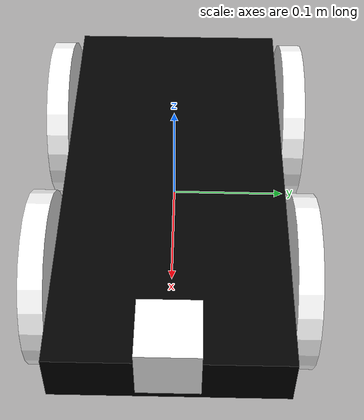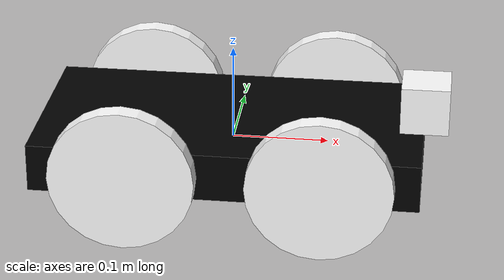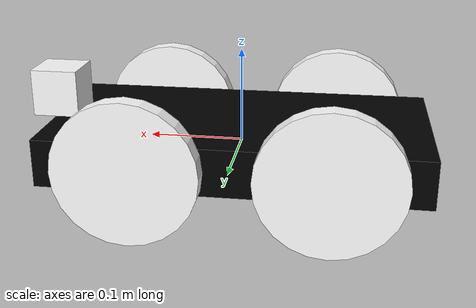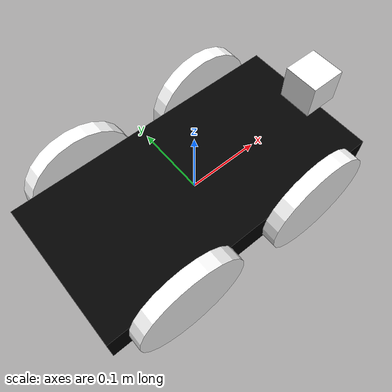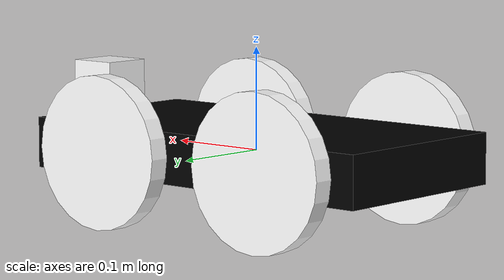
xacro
<?xml version="1.0"?>
<robot name="macroed" xmlns:xacro="http://ros.org/wiki/xacro">

  	<xacro:property name="pi" value="3.1415" />
	<xacro:property name="chassis_length" value="0.4" />
	<xacro:property name="chassis_width" value="0.2" />
	<xacro:property name="chassis_height" value="0.05" />
	<xacro:property name="wheel_radius" value="0.075" />
	<xacro:property name="wheel_length" value="0.02" />

  <material name="blue">
    <color rgba="0 0 0.8 1"/>
  </material>

  <material name="black">
    <color rgba="0 0 0 1"/>
  </material>

  <material name="white">
    <color rgba="1 1 1 1"/>e
  </material>

  <xacro:macro name="default_inertial" params="mass">
    <inertial>
      <mass value="${mass}" />
      <inertia ixx="1.0" ixy="0.0" ixz="0.0" iyy="1.0" iyz="0.0" izz="1.0" />
    </inertial>
  </xacro:macro>

  <xacro:macro name="cylinder_inertia" params ="m r h">
    <inertial>
     <mass value="${m}"/>
     <inertia ixx="${m*(3*r*r+h*h)/12}"  ixy="0.0" ixz="0.0"
              iyy="${m*(3*r*r+h*h)/12}"  iyz= "0.0"
              izz="${m*r*r/2}"/>
     </inertial>
  </xacro:macro>

  <link name="base_link">
    <visual>
      <geometry>
        <box size="${chassis_length} ${chassis_width} ${chassis_height}"/>
      </geometry>
      <material name="black"/>
    </visual>
    <collision>
      <geometry>
        <box size="${chassis_length} ${chassis_width} ${chassis_height}"/>
      </geometry>
    </collision>
    <xacro:default_inertial mass="10.0"/>
  </link>
<gazebo reference="base_link">
    <turnGravityOff>false</turnGravityOff>
	<material>Gazebo/Black</material>
  </gazebo>

  <xacro:macro name="wheel" params="prefix suffix X Y">

    <link name="${prefix}_${suffix}_wheel">
      <visual>
        <origin xyz="0 0 0" rpy="${pi/2} 0 0" />
        <geometry>
          <cylinder radius="${wheel_radius}" length="${wheel_length}"/>
        </geometry>
        <material name="white"/>
      </visual>
      <collision>
        <origin xyz="0 0 0" rpy="${pi/2} 0 0" />
        <geometry>
          <cylinder radius="${wheel_radius}" length="${wheel_length}"/>
        </geometry>
      </collision>
      <xacro:cylinder_inertia m="2.0" r="${wheel_radius}" h="${wheel_length}"/>
    </link>

    <gazebo reference ="${prefix}_${suffix}_wheel">
      <mu1 value="200.0"/>
      <mu2 value="100.0"/>
      <kp value="10000000.0"/>
      <kd value= "1.0"/>
      <material>Gazebo/White</material>
      <turnGravityOff>false</turnGravityOff>
    </gazebo>

    <joint name="${prefix}_${suffix}_wheel_joint" type="continuous">
      <axis xyz="0 1 0" rpy="0 0 0" />
      <parent link="base_link"/>
      <child link="${prefix}_${suffix}_wheel"/>
      <origin xyz="${X*(chassis_length/4)} ${Y*((chassis_width/2)+(wheel_length/2))} 0" rpy="0 0 0"/>
      <limit effort= "100" velocity="100"/>
      <dynamics damping="0.0" friction="0.0"/>
    </joint>

    <transmission name="${prefix}_${suffix}_wheel_trans">
      <type>transmission_interface/SimpleTransmission</type>
      <actuator name="${prefix}_${suffix}_wheel_motor">
	<hardwareInterface>EffortJointInterface</hardwareInterface>
        <mechanicalReduction>1</mechanicalReduction>
      </actuator>
      <joint name="${prefix}_${suffix}_wheel_joint">
        <hardwareInterface>VelocityJointInterface</hardwareInterface>
      </joint>
    </transmission>

  </xacro:macro>

<xacro:wheel prefix="right" suffix="front" X="1" Y="-1"/>
<xacro:wheel prefix="right" suffix="back" X="-1" Y="-1" />
<xacro:wheel prefix="left" suffix="front" X="1" Y="1" />
<xacro:wheel prefix="left" suffix="back" X="-1" Y="1"/>

<link name="camera_link">
  <visual>
    <origin xyz="0 0 0" rpy="0 0 0"/>
   <geometry>
     <box size="0.05 0.05 0.05"/>
   </geometry>
   <material name="white"/>
   </visual>
 </link>

<joint name="camera_joint" type="fixed">
  <origin xyz="0.2 0 0.05" rpy="0 0 0"/>
  <parent link="base_link"/>
  <child link="camera_link"/>
</joint>

 <gazebo reference="camera_link">
    <sensor type="camera" name="camera1">
      <update_rate>30.0</update_rate>
      <camera name="head">
        <horizontal_fov>1.3962634</horizontal_fov>
        <image>
          <width>800</width>
          <height>800</height>
          <format>R8G8B8</format>
        </image>
        <clip>
          <near>0.02</near>
          <far>300</far>
        </clip>
        <noise>
          <type>gaussian</type>
          <!-- Noise is sampled independently per pixel on each frame.
               That pixel's noise value is added to each of its color
               channels, which at that point lie in the range [0,1]. -->
          <mean>0.0</mean>
          <stddev>0.007</stddev>
        </noise>
      </camera>
      <plugin name="camera_controller" filename="libgazebo_ros_camera.so">
        <alwaysOn>true</alwaysOn>
        <updateRate>0.0</updateRate>
        <cameraName>rrbot/camera1</cameraName>
        <imageTopicName>image_raw</imageTopicName>
        <cameraInfoTopicName>camera_info</cameraInfoTopicName>
        <frameName>camera_link</frameName>
        <hackBaseline>0.07</hackBaseline>
        <distortionK1>0.0</distortionK1>
        <distortionK2>0.0</distortionK2>
        <distortionK3>0.0</distortionK3>
        <distortionT1>0.0</distortionT1>
        <distortionT2>0.0</distortionT2>
      </plugin>
    </sensor>
  </gazebo>

 <gazebo>
    <plugin name="gazebo_ros_control" filename="libgazebo_ros_control.so">
      <robotNamespace>/</robotNamespace>
    <robotSimType>gazebo_ros_control/DefaultRobotHWSim</robotSimType>
    <legacyModeNS>true</legacyModeNS>
    </plugin>
  </gazebo>

</robot>
